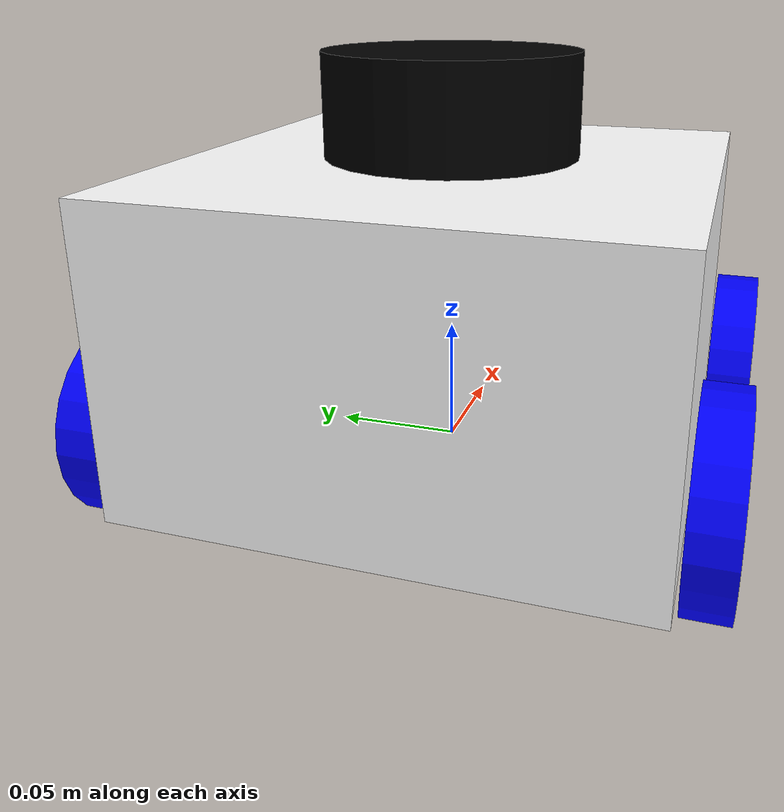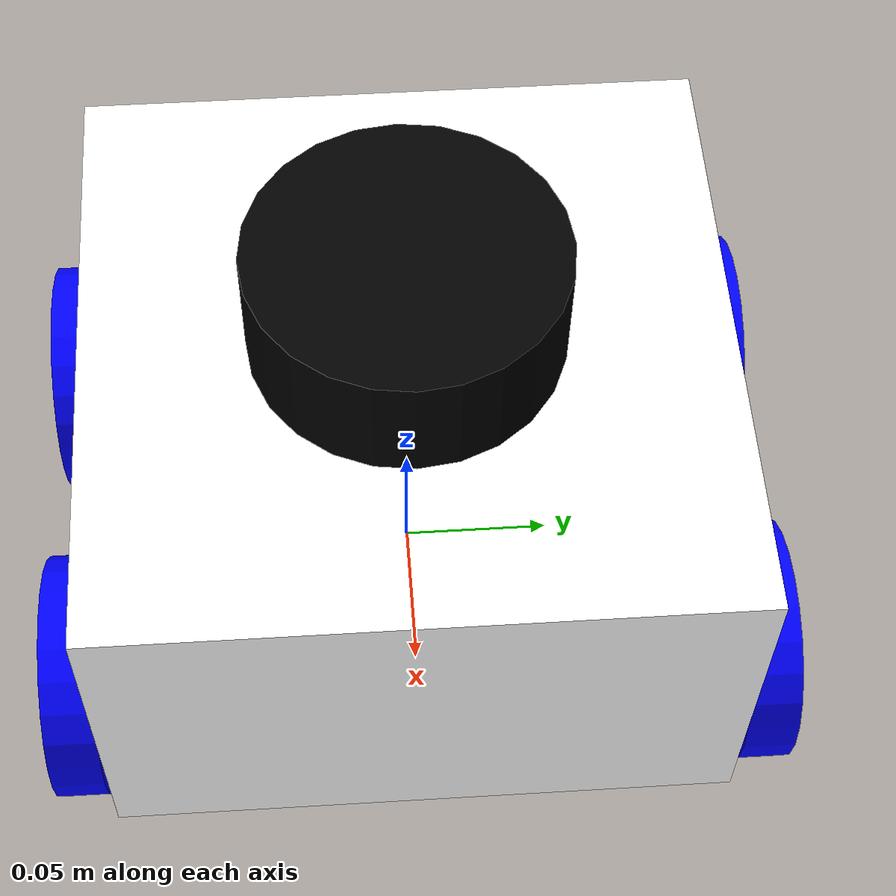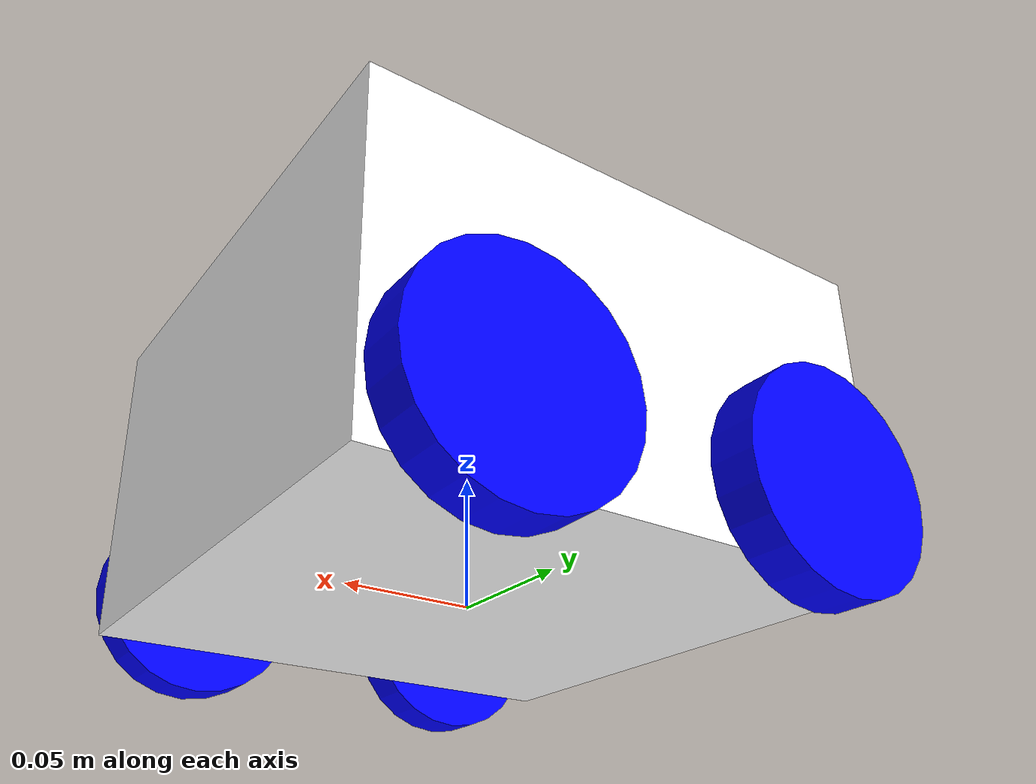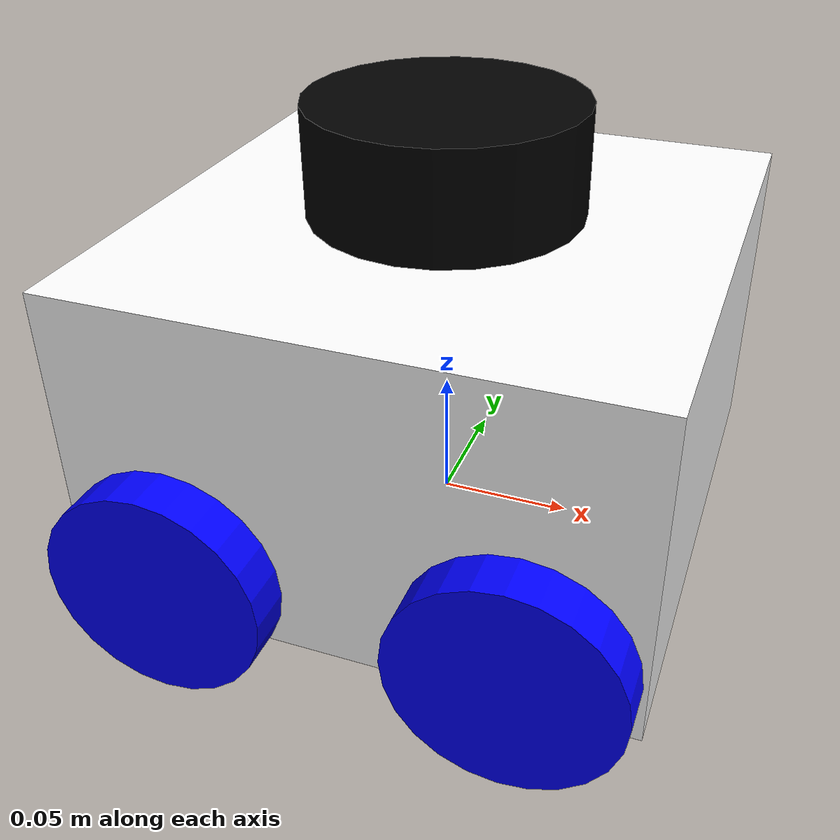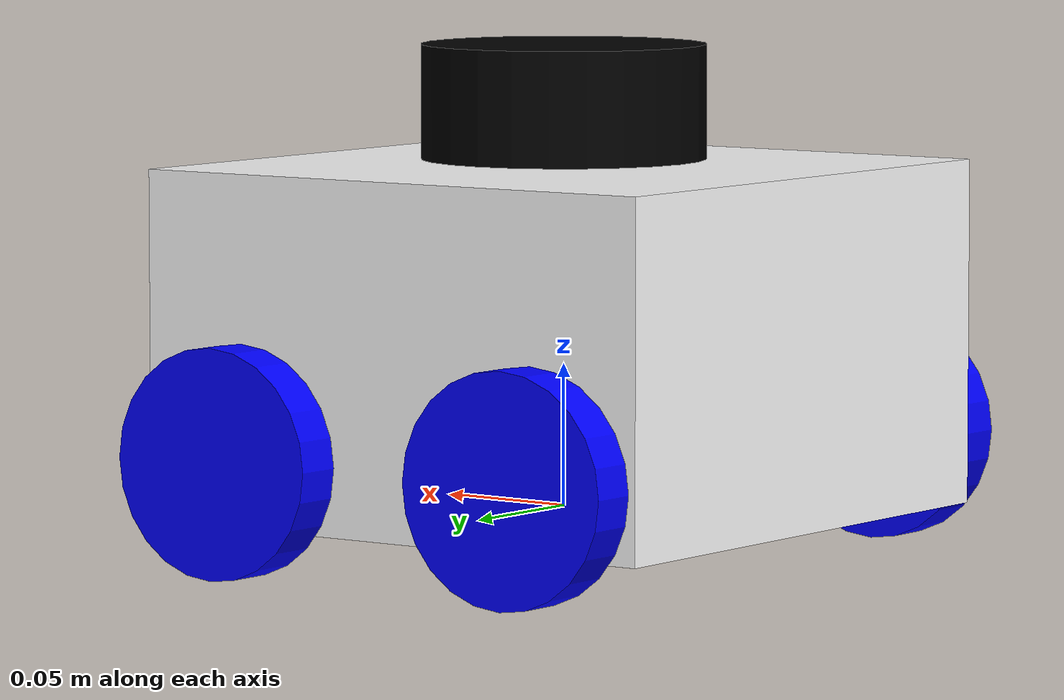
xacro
<?xml version="1.0"?>
<robot xmlns:xacro="http://www.ros.org/wiki/xacro"  name="robot">

    <xacro:arg name="use_ros2_control" default="true"/>
    <xacro:arg name="sim_mode" default="false"/>

    <xacro:include filename="robot_core.xacro" />

    <xacro:include filename="ros2_mm_control.xacro" />

    <xacro:include filename="lidar.xacro" />

</robot>

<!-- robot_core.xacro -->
<robot xmlns:xacro="http://www.ros.org/wiki/xacro" >
    <xacro:include filename="inertial_macros.xacro"/>

    <xacro:property name="chassis_length" value="0.205"/>
    <xacro:property name="chassis_width" value="0.205"/>
    <xacro:property name="chassis_height" value="0.122"/>
    <xacro:property name="chassis_mass" value="0.8"/>
    <xacro:property name="wheel_radius" value="0.04"/>
    <xacro:property name="wheel_thickness" value="0.017"/>
    <xacro:property name="wheel_mass" value="0.04"/>
    <xacro:property name="wheel_offset_x" value="0.061"/>
    <xacro:property name="wheel_offset_y" value="0.1125"/>
    <xacro:property name="wheel_offset_z" value="0.012"/>
    <xacro:property name="z_offset_global" value="0.01"/>

    <material name="white">
        <color rgba="1.0 1.0 1.0 1"/>
    </material>
    <material name="blue">
        <color rgba="0.0 0.0 1.0 1"/>
    </material>
    <material name="red">
        <color rgba="1.0 0.0 0.0 1"/>
    </material>

    <xacro:macro name="master_wheel" params="name x y joint_name">
        <joint name="${joint_name}" type="continuous">
            <parent link="base_link"/>
            <child link="${name}"/>
            <origin xyz="${x} ${y} ${wheel_offset_z + z_offset_global}" rpy="${pi/2} 0 0"/>
            <axis xyz="0 0 1"/>
        </joint>
        <link name="${name}">
            <visual>
                <geometry>
                    <cylinder radius="${wheel_radius}" length="${wheel_thickness}"/>
                </geometry>
                <material name="blue"/>
            </visual>
            <collision>
                <geometry>
                    <cylinder radius="${wheel_radius}" length="${wheel_thickness}"/>
                </geometry>
            </collision>
        </link>
        <gazebo reference="${name}">
            <material>Gazebo/Blue</material>
        </gazebo>
    </xacro:macro>

    <xacro:macro name="mimic_wheel" params="name x y master_joint_name">
        <joint name="${name}_joint" type="continuous">
            <parent link="base_link"/>
            <child link="${name}"/>
            <origin xyz="${x} ${y} ${wheel_offset_z + z_offset_global}" rpy="${pi/2} 0 0"/>
            <axis xyz="0 0 1"/>
            <mimic joint="${master_joint_name}" multiplier="1.0" />
        </joint>
        <link name="${name}">
            <visual>
                <geometry>
                    <cylinder radius="${wheel_radius}" length="${wheel_thickness}"/>
                </geometry>
                <material name="blue"/>
            </visual>
            <collision>
                <geometry>
                    <cylinder radius="${wheel_radius}" length="${wheel_thickness}"/>
                </geometry>
            </collision>
        </link>
        <gazebo reference="${name}">
            <material>Gazebo/Blue</material>
        </gazebo>
    </xacro:macro>

    <link name="base_link">
    </link>

    <joint name="base_footprint_joint" type="fixed">
        <parent link="base_link"/>
        <child link="base_footprint"/>
        <origin xyz="0 0 ${z_offset_global}" rpy="0 0 0"/>
    </joint>
    <link name="base_footprint">
    </link>

    <joint name="chassis_joint" type="fixed">
        <parent link="base_link"/>
        <child link="chassis"/>
        <origin xyz="0 0 ${chassis_height/2 - wheel_offset_z + z_offset_global}" rpy="0 0 0"/>
    </joint>
    <link name="chassis">
        <visual>
            <origin xyz="0 0 0"/>
            <geometry>
                <box size="${chassis_length} ${chassis_width} ${chassis_height}"/>
            </geometry>
            <material name="white"/>
        </visual>
        <collision>
            <origin xyz="0 0 0"/>
            <geometry>
                <box size="${chassis_length} ${chassis_width} ${chassis_height}"/>
            </geometry>
        </collision>
    </link>
    <gazebo reference="chassis">
        <material>Gazebo/White</material>
    </gazebo>

    <xacro:master_wheel name="wheel_1" x="${wheel_offset_x}" y="-${wheel_offset_y}" joint_name="wheel_1"/>
    <xacro:mimic_wheel name="wheel_3" x="${wheel_offset_x}" y="${wheel_offset_y}" master_joint_name="wheel_2"/>

    <xacro:master_wheel name="wheel_2" x="-${wheel_offset_x}" y="${wheel_offset_y}" joint_name="wheel_3"/>
    <xacro:mimic_wheel name="wheel_4" x="-${wheel_offset_x}" y="-${wheel_offset_y}" master_joint_name="wheel_4"/>

</robot>

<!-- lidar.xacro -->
<robot xmlns:xacro="http://www.ros.org/wiki/xacro" >

<material name="black">
    <color rgba="0 0 0 1"/>
</material>

    <joint name="laser_joint" type="fixed">
        <parent link="base_link"/>
        <child link="laser_frame"/>
        <origin xyz="0 0 0.142" rpy="0 0 ${pi}"/>

    </joint>

    <link name="laser_frame">
        <visual>
            <geometry>
                <cylinder radius="0.05" length="0.04"/>
            </geometry>
            <material name="black"/>
        </visual>
        <visual>
            <origin xyz="0 0 -0.05"/>
            <geometry>
                <cylinder radius="0.01" length="0.1"/>
            </geometry>
            <material name="black"/>
        </visual>
        <collision>
            <geometry>
                <cylinder radius="0.05" length="0.04"/>
            </geometry>
        </collision>
        <xacro:inertial_cylinder mass="0.1" length="0.04" radius="0.05">
            <origin xyz="0 0 0" rpy="0 0 0"/>
        </xacro:inertial_cylinder>
    </link>

    <gazebo reference="laser_frame">
        <material>Gazebo/Black</material>

        <sensor name="laser" type="ray">
            <pose> 0 0 0 0 0 0 </pose>
            <visualize>false</visualize>
            <update_rate>10</update_rate>
            <ray>
                <scan>
                    <horizontal>
                        <samples>360</samples>
                        <min_angle>-3.14</min_angle>
                        <max_angle>3.14</max_angle>
                    </horizontal>
                </scan>
                <range>
                    <min>0.3</min>
                    <max>12</max>
                </range>
            </ray>
            <plugin name="laser_controller" filename="libgazebo_ros_ray_sensor.so">
                <ros>
                    <argument>~/out:=scan</argument>
                </ros>
                <output_type>sensor_msgs/LaserScan</output_type>
                <frame_name>laser_frame</frame_name>
            </plugin>
        </sensor>
    </gazebo>

</robot>
